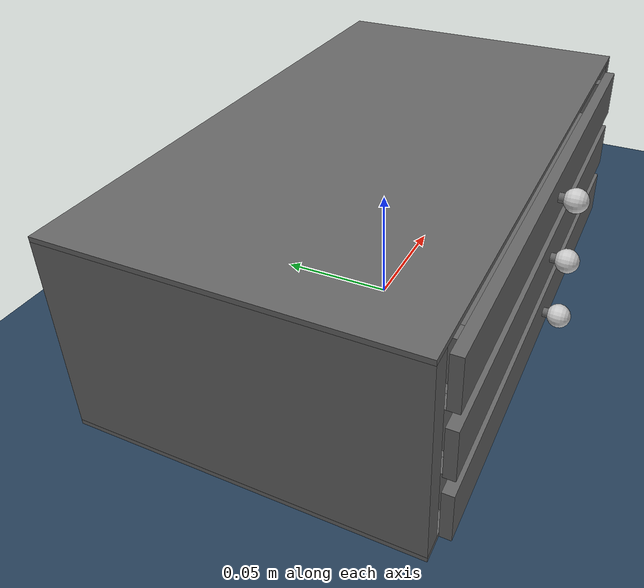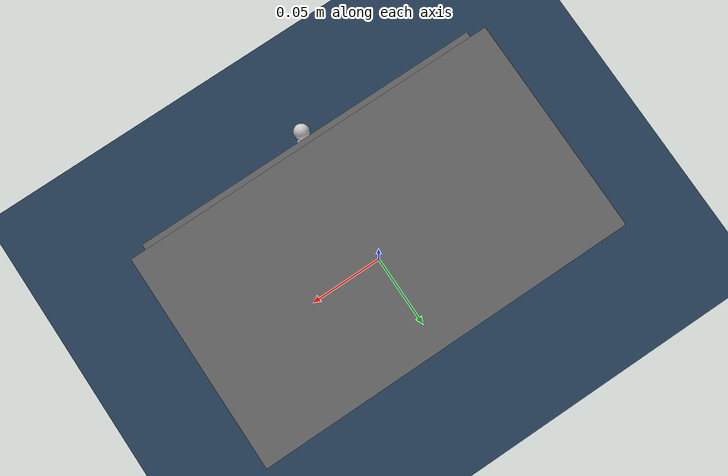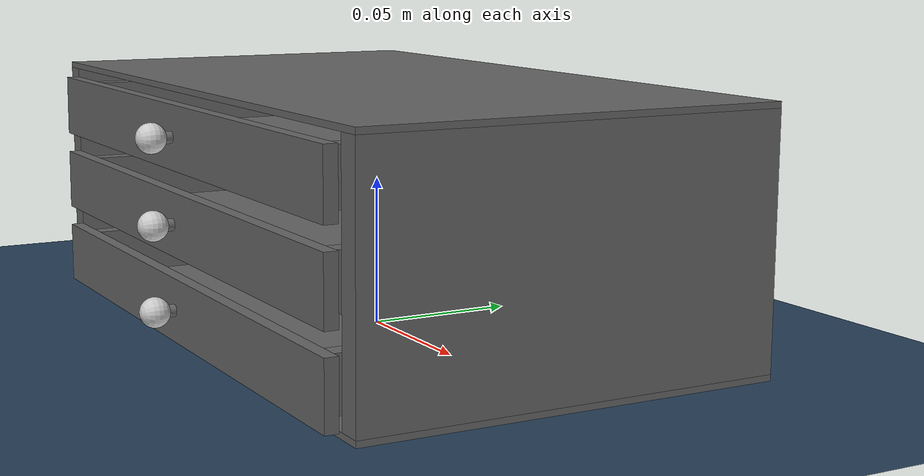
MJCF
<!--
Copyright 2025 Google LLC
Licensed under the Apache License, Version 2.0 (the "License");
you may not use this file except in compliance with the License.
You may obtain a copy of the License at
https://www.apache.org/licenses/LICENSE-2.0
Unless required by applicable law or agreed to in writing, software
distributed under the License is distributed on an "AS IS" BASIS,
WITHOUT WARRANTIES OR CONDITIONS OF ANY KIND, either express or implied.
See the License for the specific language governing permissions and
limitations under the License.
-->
<mujoco model="drawer scene">
  <include file="model.xml"/>

  <option>
    <flag multiccd="enable"/>
  </option>

  <statistic center="0 0 0.1" extent="0.4" meansize="0.02"/>

  <visual>
    <headlight diffuse="0.6 0.6 0.6" ambient="0.3 0.3 0.3" specular="0 0 0"/>
    <rgba haze="0.15 0.25 0.35 1"/>
    <global azimuth="120" elevation="-10"/>
  </visual>

  <asset>
    <texture type="skybox" builtin="gradient" rgb1="0.3 0.5 0.7" rgb2="0 0 0" width="512" height="3072"/>
    <texture type="2d" name="groundplane" builtin="checker" mark="edge" rgb1="0.2 0.3 0.4" rgb2="0.1 0.2 0.3"
      markrgb="0.8 0.8 0.8" width="300" height="300"/>
    <material name="groundplane" texture="groundplane" texuniform="true" texrepeat="5 5" reflectance="0.2"/>
  </asset>

  <worldbody>
    <light pos="0 0 1.5" directional="true"/>
    <geom name="floor" size="0 0 0.05" type="plane" material="groundplane"/>
  </worldbody>
</mujoco>

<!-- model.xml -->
<mujoco model="mk1157_counter">
  <compiler meshdir="meshes" angle="radian" autolimits="true"/>
  <asset>
    <mesh name="mk1157_counter_collision_01" file="mk1157_counter_collision_01.stl" scale="0.4 0.23 0.1"/>
    <mesh name="mk1157_counter_collision_02" file="mk1157_counter_collision_02.stl" scale="0.4 0.23 0.1"/>
    <mesh name="mk1157_counter_collision_03" file="mk1157_counter_collision_03.stl" scale="0.4 0.23 0.1"/>
    <mesh name="mk1157_counter_collision_04" file="mk1157_counter_collision_04.stl" scale="0.4 0.23 0.1"/>
    <mesh name="mk1157_counter_collision_05" file="mk1157_counter_collision_05.stl" scale="0.4 0.23 0.1"/>
    <mesh name="mk1157_counter_collision_06" file="mk1157_counter_collision_06.stl" scale="0.4 0.23 0.1"/>
    <mesh name="mk1157_counter_collision_07" file="mk1157_counter_collision_07.stl" scale="0.4 0.23 0.1"/>
    <mesh name="mk1157_drawer_collision_01" file="mk1157_drawer_collision_01.stl" scale="0.37 0.23 0.15"/>
    <mesh name="mk1157_drawer_collision_02" file="mk1157_drawer_collision_02.stl" scale="0.37 0.23 0.15"/>
    <mesh name="mk1157_drawer_collision_03" file="mk1157_drawer_collision_03.stl" scale="0.37 0.23 0.15"/>
    <mesh name="mk1157_drawer_collision_04" file="mk1157_drawer_collision_04.stl" scale="0.37 0.23 0.15"/>
    <mesh name="mk1157_drawer_collision_05" file="mk1157_drawer_collision_05.stl" scale="0.37 0.23 0.15"/>
  </asset>
  <worldbody>
   <body name="drawer" pos="0 0 0">
   <freejoint/>
    <geom type="mesh" name="counter_top" rgba="0.4 0.4 0.4 1" mesh="mk1157_counter_collision_01"/>
    <geom type="mesh" name="counter_bottom" rgba="0.4 0.4 0.4 1" mesh="mk1157_counter_collision_02"/>
    <geom type="mesh" name="counter_right"  rgba="0.4 0.4 0.4 1" mesh="mk1157_counter_collision_03"/>
    <geom type="mesh" name="counter_back"   rgba="0.4 0.4 0.4 1" mesh="mk1157_counter_collision_05"/>
    <geom type="mesh" name="counter_left"   rgba="0.4 0.4 0.4 1" mesh="mk1157_counter_collision_06"/>
    <body name="link_top_drawer_low" pos="0 0 0.068">
      <joint name="joint_top_drawer_low" pos="0 0 0" axis="0 -1 0" type="slide" range="0 0.1" damping="5"/>
      <geom type="cylinder" rgba="0.4 0.4 0.4 1" size="0.002 0.002" density="200" pos="0.0 -0.075 0" quat=".707107 -0.707107 0 0"/>
      <geom type="sphere" rgba="0.8 0.8 0.8 1" size="0.005" density="200" pos="0.0 -0.08 0" quat=".707107 -0.707107 0 0"/>
      <site name="top_handle" pos="0 -0.3 0.08" size="0.005 0.005 0.005" rgba="1 .1 .1 .3" group="3"/>
      <geom type="mesh" rgba="0.4 0.4 0.4 1" mesh="mk1157_drawer_collision_01" density="200"/>
      <geom type="mesh" rgba="0.4 0.4 0.4 1" mesh="mk1157_drawer_collision_02" density="200"/>
      <geom type="mesh" rgba="0.4 0.4 0.4 1" mesh="mk1157_drawer_collision_03" density="200"/>
      <geom type="mesh" rgba="0.4 0.4 0.4 1" mesh="mk1157_drawer_collision_04" density="200"/>
      <geom type="mesh" name="top" rgba="0.4 0.4 0.4 1" mesh="mk1157_drawer_collision_05" density="200"/>
    </body>
    <body name="link_middle_drawer_low" pos="0 0 0.04">
      <joint name="joint_middle_drawer_low" pos="0 0 0" axis="0 -1 0" type="slide" range="0 0.1" damping="5"/>
      <geom type="cylinder" rgba="0.4 0.4 0.4 1" size="0.002 0.002" density="200" pos="0.0 -0.075 0" quat=".707107 -0.707107 0 0"/>
      <geom type="sphere" rgba="0.8 0.8 0.8 1" size="0.005" density="200" pos="0.0 -0.08 0" quat=".707107 -0.707107 0 0"/>
      <site name="mid_handle" pos="0 -0.35 0.05" size="0.005 0.005 0.005" rgba="1 .1 .1 .3" group="3"/>
      <geom type="mesh" rgba="0.4 0.4 0.4 1" mesh="mk1157_drawer_collision_01" density="200"/>
      <geom type="mesh" rgba="0.4 0.4 0.4 1" mesh="mk1157_drawer_collision_02" density="200"/>
      <geom type="mesh" rgba="0.4 0.4 0.4 1" mesh="mk1157_drawer_collision_03" density="200"/>
      <geom type="mesh" rgba="0.4 0.4 0.4 1" mesh="mk1157_drawer_collision_04" density="200"/>
      <geom type="mesh" rgba="0.4 0.4 0.4 1" mesh="mk1157_drawer_collision_05" density="200"/>
    </body>
    <body name="link_bottom_drawer_low" pos="0 0 0.012">
      <joint name="joint_bottom_drawer_low" pos="0 0 0" axis="0 -1 0" type="slide" range="0 0.1" damping="5"/>
      <geom type="cylinder" rgba="0.4 0.4 0.4 1" size="0.002 0.002" density="200" pos="0.0 -0.075 0" quat=".707107 -0.707107 0 0"/>
      <geom type="sphere" rgba="0.8 0.8 0.8 1" size="0.005" density="200" pos="0.0 -0.08 0" quat=".707107 -0.707107 0 0"/>
      <geom type="mesh" rgba="0.4 0.4 0.4 1" mesh="mk1157_drawer_collision_01" density="200"/>
      <geom type="mesh" rgba="0.4 0.4 0.4 1" mesh="mk1157_drawer_collision_02" density="200"/>
      <geom type="mesh" rgba="0.4 0.4 0.4 1" mesh="mk1157_drawer_collision_03" density="200"/>
      <geom type="mesh" rgba="0.4 0.4 0.4 1" mesh="mk1157_drawer_collision_04" density="200"/>
      <geom type="mesh" rgba="0.4 0.4 0.4 1" mesh="mk1157_drawer_collision_05" density="200"/>
    </body>
   </body>
  </worldbody>
</mujoco>
